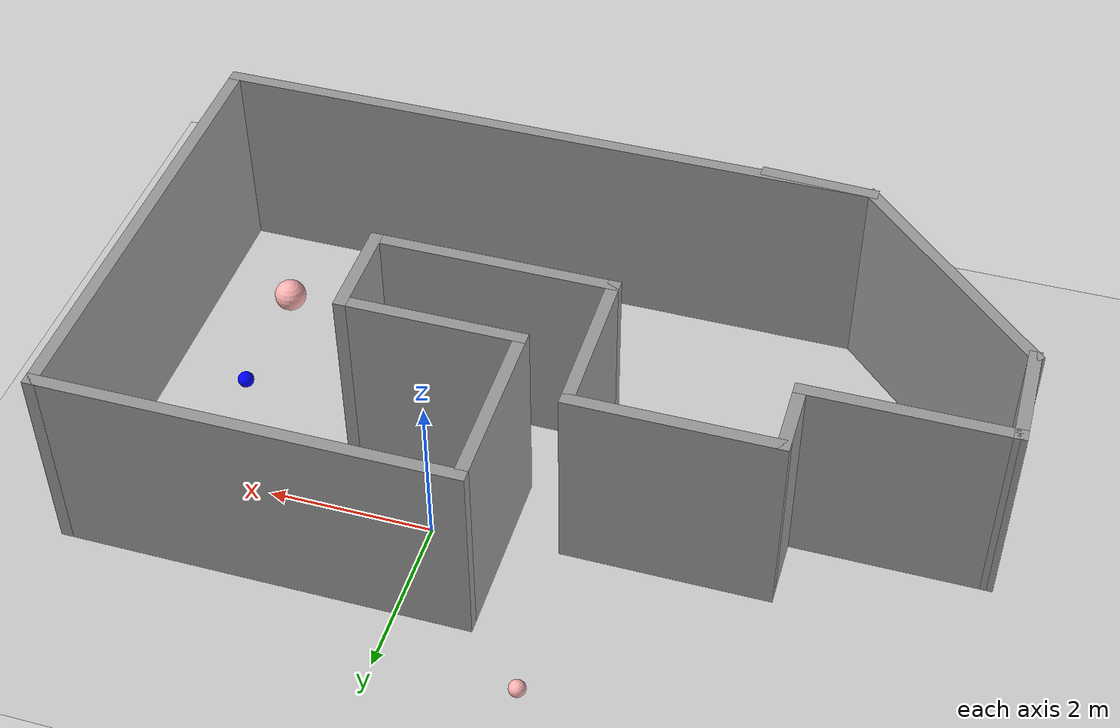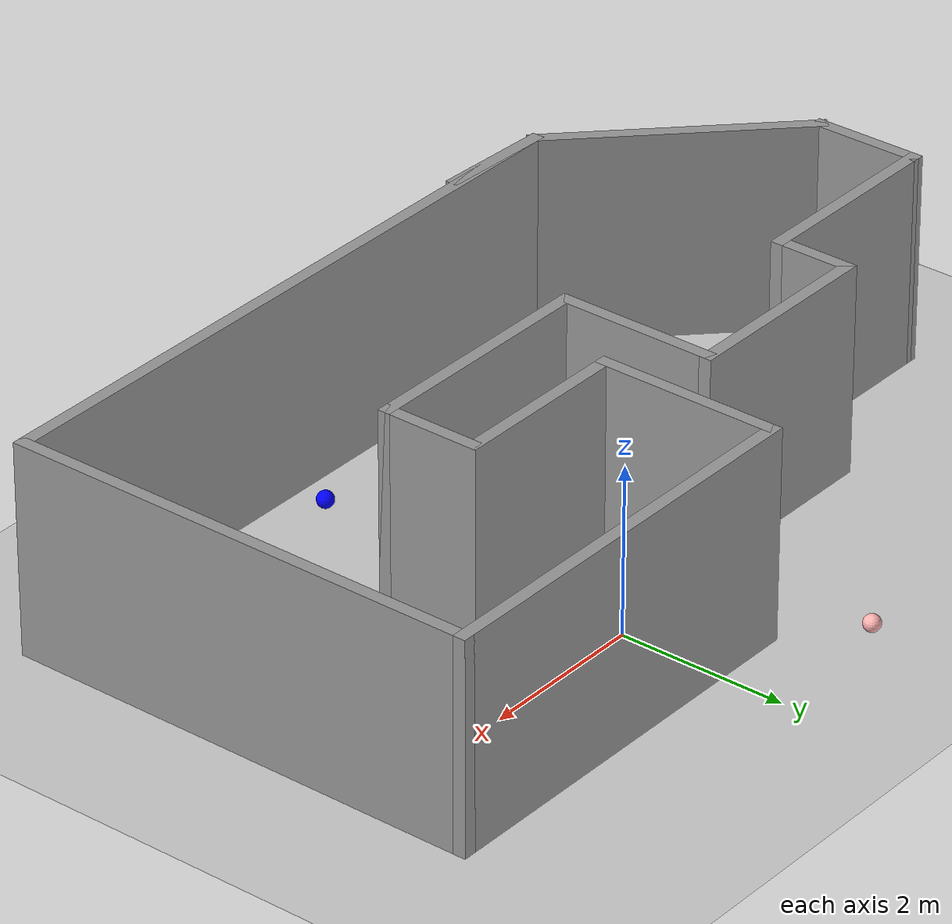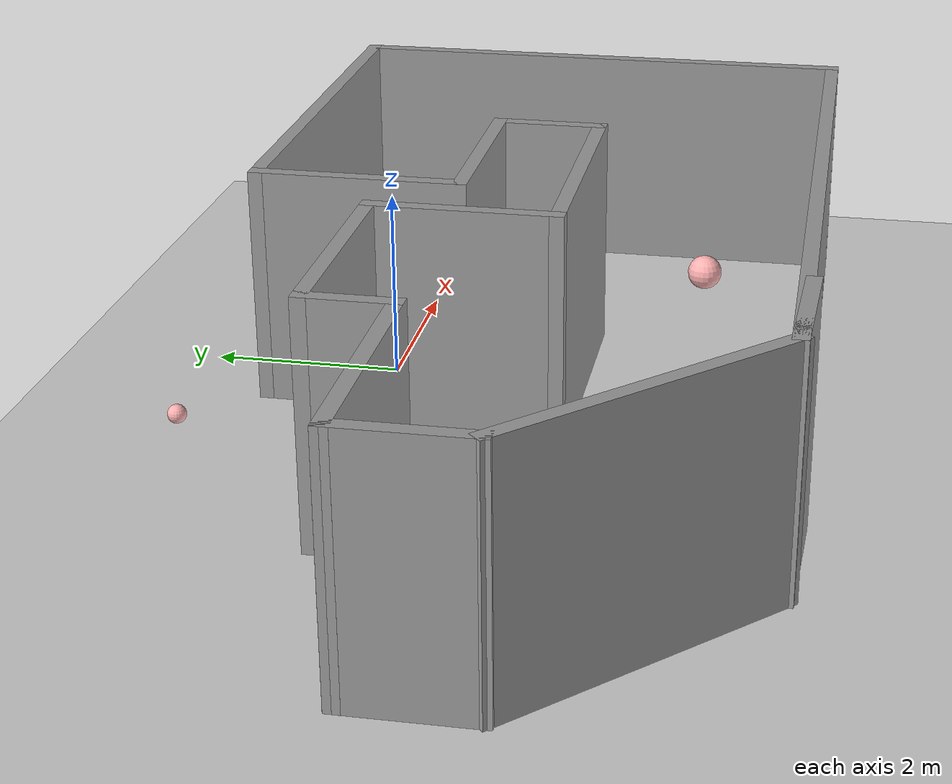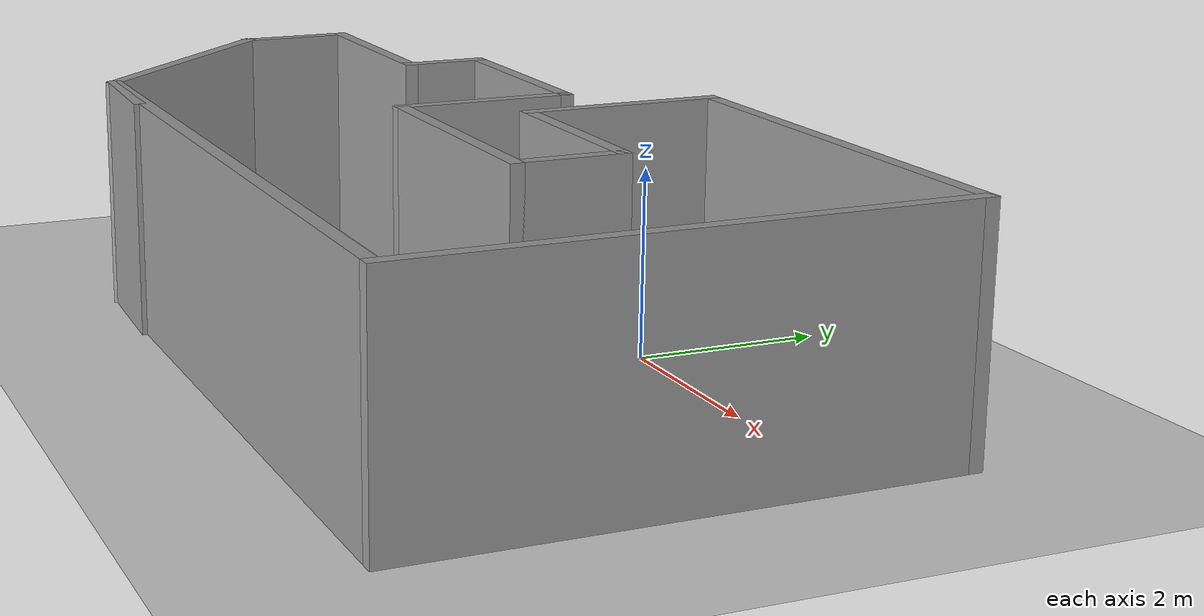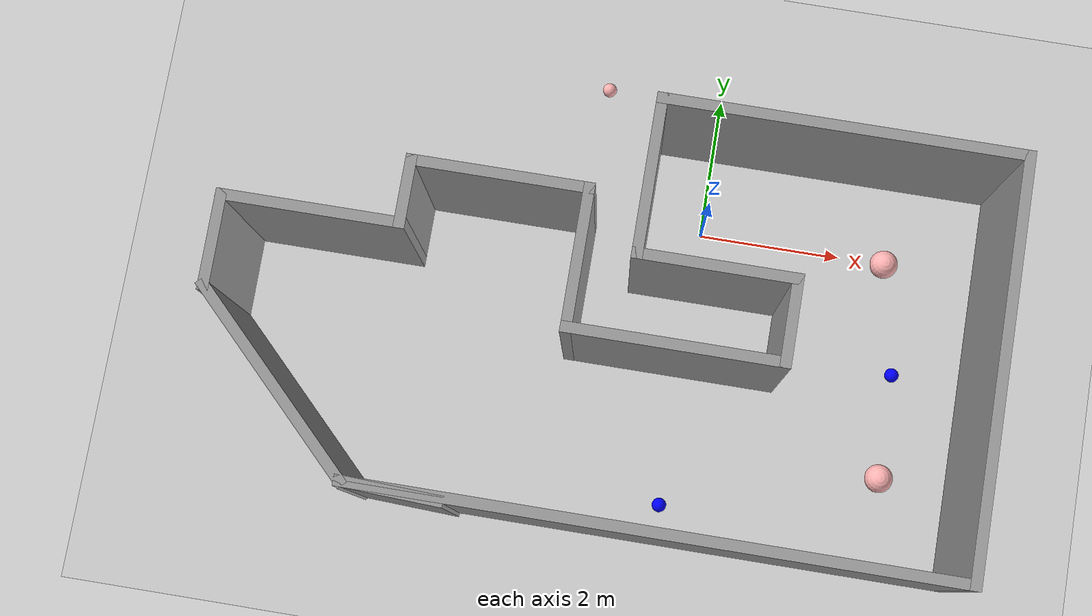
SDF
<sdf version="1.6">
 <world name="default">
  <model name="ground_plane">
   <static>1</static>
   <link name="link">
    <collision name="collision">
     <geometry><plane><normal>0 0 1</normal><size>100 100</size></plane></geometry>
     <surface>
      <contact><collide_bitmask>65535</collide_bitmask></contact>
      <friction><ode><mu>100</mu><mu2>50</mu2></ode></friction>
     </surface>
    </collision>
    <visual name="visual">
     <cast_shadows>0</cast_shadows>
     <geometry><plane><normal>0 0 1</normal><size>100 100</size></plane></geometry>
     <material>
      <script><uri>file://media/materials/scripts/gazebo.material</uri><name>Gazebo/Grey</name></script>
     </material>
    </visual>
   </link>
  </model>
  <model name="closed_building">
   <pose>-1.14525 -1.64005 0 0 -0 0</pose>
   <link name="Wall_0">
    <collision name="Wall_0_Collision">
     <geometry><box><size>3.25 0.15 2.5</size></box></geometry>
     <pose>0 0 1.25 0 -0 0</pose>
    </collision>
    <visual name="Wall_0_Visual">
     <pose>0 0 1.25 0 -0 0</pose>
     <geometry><box><size>3.25 0.15 2.5</size></box></geometry>
     <material>
      <script><uri>file://media/materials/scripts/gazebo.material</uri><name>Gazebo/Grey</name></script>
      <ambient>1 1 1 1</ambient>
     </material>
     <meta><layer>0</layer></meta>
    </visual>
    <pose>-4.03447 -1.67669 0 0 0 -0.785398</pose>
   </link>
   <link name="Wall_10">
    <collision name="Wall_10_Collision">
     <geometry><box><size>2 0.15 2.5</size></box></geometry>
     <pose>0 0 1.25 0 -0 0</pose>
    </collision>
    <visual name="Wall_10_Visual">
     <pose>0 0 1.25 0 -0 0</pose>
     <geometry><box><size>2 0.15 2.5</size></box></geometry>
     <material>
      <script><uri>file://media/materials/scripts/gazebo.material</uri><name>Gazebo/Grey</name></script>
      <ambient>1 1 1 1</ambient>
     </material>
     <meta><layer>0</layer></meta>
    </visual>
    <pose>-0.438452 0.552296 0 0 -0 1.5708</pose>
   </link>
   <link name="Wall_11">
    <collision name="Wall_11_Collision">
     <geometry><box><size>2.5 0.15 2.5</size></box></geometry>
     <pose>0 0 1.25 0 -0 0</pose>
    </collision>
    <visual name="Wall_11_Visual">
     <pose>0 0 1.25 0 -0 0</pose>
     <geometry><box><size>2.5 0.15 2.5</size></box></geometry>
     <material>
      <script><uri>file://media/materials/scripts/gazebo.material</uri><name>Gazebo/Grey</name></script>
      <ambient>1 1 1 1</ambient>
     </material>
     <meta><layer>0</layer></meta>
    </visual>
    <pose>-1.61345 1.4773 0 0 -0 3.14159</pose>
   </link>
   <link name="Wall_12">
    <collision name="Wall_12_Collision">
     <geometry><box><size>1 0.15 2.5</size></box></geometry>
     <pose>0 0 1.25 0 -0 0</pose>
    </collision>
    <visual name="Wall_12_Visual">
     <pose>0 0 1.25 0 -0 0</pose>
     <geometry><box><size>1 0.15 2.5</size></box></geometry>
     <material>
      <script><uri>file://media/materials/scripts/gazebo.material</uri><name>Gazebo/Grey</name></script>
      <ambient>1 1 1 1</ambient>
     </material>
     <meta><layer>0</layer></meta>
    </visual>
    <pose>-2.78845 1.0523 0 0 0 -1.5708</pose>
   </link>
   <link name="Wall_13">
    <collision name="Wall_13_Collision">
     <geometry><box><size>2.5 0.15 2.5</size></box></geometry>
     <pose>0 0 1.25 0 -0 0</pose>
    </collision>
    <visual name="Wall_13_Visual">
     <pose>0 0 1.25 0 -0 0</pose>
     <geometry><box><size>2.5 0.15 2.5</size></box></geometry>
     <material>
      <script><uri>file://media/materials/scripts/gazebo.material</uri><name>Gazebo/Grey</name></script>
      <ambient>1 1 1 1</ambient>
     </material>
     <meta><layer>0</layer></meta>
    </visual>
    <pose>-3.96345 0.627296 0 0 -0 3.14159</pose>
   </link>
   <link name="Wall_14">
    <collision name="Wall_14_Collision">
     <geometry><box><size>1.358 0.15 2.5</size></box></geometry>
     <pose>0 0 1.25 0 -0 0</pose>
    </collision>
    <visual name="Wall_14_Visual">
     <pose>0 0 1.25 0 -0 0</pose>
     <geometry><box><size>1.358 0.15 2.5</size></box></geometry>
     <material>
      <script><uri>file://media/materials/scripts/gazebo.material</uri><name>Gazebo/Grey</name></script>
      <ambient>1 1 1 1</ambient>
     </material>
     <meta><layer>0</layer></meta>
    </visual>
    <pose>-5.13447 0.023312 0 0 0 -1.5642</pose>
   </link>
   <link name="Wall_2">
    <collision name="Wall_2_Collision">
     <geometry><box><size>1.42053 0.15 2.5</size></box></geometry>
     <pose>0 0 1.25 0 -0 0</pose>
    </collision>
    <visual name="Wall_2_Visual">
     <pose>0 0 1.25 0 -0 0</pose>
     <geometry><box><size>1.42053 0.15 2.5</size></box></geometry>
     <material>
      <script><uri>file://media/materials/scripts/gazebo.material</uri><name>Gazebo/Grey</name></script>
      <ambient>1 1 1 1</ambient>
     </material>
     <meta><layer>0</layer></meta>
    </visual>
    <pose>-2.30371 -2.79851 0 0 -0 3.10096</pose>
   </link>
   <link name="Wall_3">
    <collision name="Wall_3_Collision">
     <geometry><box><size>8.25 0.15 2.5</size></box></geometry>
     <pose>0 0 1.25 0 -0 0</pose>
    </collision>
    <visual name="Wall_3_Visual">
     <pose>0 0 1.25 0 -0 0</pose>
     <geometry><box><size>8.25 0.15 2.5</size></box></geometry>
     <material>
      <script><uri>file://media/materials/scripts/gazebo.material</uri><name>Gazebo/Grey</name></script>
      <ambient>1 1 1 1</ambient>
     </material>
     <meta><layer>0</layer></meta>
    </visual>
    <pose>1.11155 -2.7727 0 0 -0 0</pose>
   </link>
   <link name="Wall_4">
    <collision name="Wall_4_Collision">
     <geometry><box><size>5.75 0.15 2.5</size></box></geometry>
     <pose>0 0 1.25 0 -0 0</pose>
    </collision>
    <visual name="Wall_4_Visual">
     <pose>0 0 1.25 0 -0 0</pose>
     <geometry><box><size>5.75 0.15 2.5</size></box></geometry>
     <material>
      <script><uri>file://media/materials/scripts/gazebo.material</uri><name>Gazebo/Grey</name></script>
      <ambient>1 1 1 1</ambient>
     </material>
     <meta><layer>0</layer></meta>
    </visual>
    <pose>5.16155 0.027296 0 0 -0 1.5708</pose>
   </link>
   <link name="Wall_5">
    <collision name="Wall_5_Collision">
     <geometry><box><size>5 0.15 2.5</size></box></geometry>
     <pose>0 0 1.25 0 -0 0</pose>
    </collision>
    <visual name="Wall_5_Visual">
     <pose>0 0 1.25 0 -0 0</pose>
     <geometry><box><size>5 0.15 2.5</size></box></geometry>
     <material>
      <script><uri>file://media/materials/scripts/gazebo.material</uri><name>Gazebo/Grey</name></script>
      <ambient>1 1 1 1</ambient>
     </material>
     <meta><layer>0</layer></meta>
    </visual>
    <pose>2.73655 2.8273 0 0 -0 3.14159</pose>
   </link>
   <link name="Wall_6">
    <collision name="Wall_6_Collision">
     <geometry><box><size>2.25 0.15 2.5</size></box></geometry>
     <pose>0 0 1.25 0 -0 0</pose>
    </collision>
    <visual name="Wall_6_Visual">
     <pose>0 0 1.25 0 -0 0</pose>
     <geometry><box><size>2.25 0.15 2.5</size></box></geometry>
     <material>
      <script><uri>file://media/materials/scripts/gazebo.material</uri><name>Gazebo/Grey</name></script>
      <ambient>1 1 1 1</ambient>
     </material>
     <meta><layer>0</layer></meta>
    </visual>
    <pose>0.311548 1.7773 0 0 0 -1.5708</pose>
   </link>
   <link name="Wall_7">
    <collision name="Wall_7_Collision">
     <geometry><box><size>2.25 0.15 2.5</size></box></geometry>
     <pose>0 0 1.25 0 -0 0</pose>
    </collision>
    <visual name="Wall_7_Visual">
     <pose>0 0 1.25 0 -0 0</pose>
     <geometry><box><size>2.25 0.15 2.5</size></box></geometry>
     <material>
      <script><uri>file://media/materials/scripts/gazebo.material</uri><name>Gazebo/Grey</name></script>
      <ambient>1 1 1 1</ambient>
     </material>
     <meta><layer>0</layer></meta>
    </visual>
    <pose>1.36155 0.727296 0 0 -0 0</pose>
   </link>
   <link name="Wall_8">
    <collision name="Wall_8_Collision">
     <geometry><box><size>1.25 0.15 2.5</size></box></geometry>
     <pose>0 0 1.25 0 -0 0</pose>
    </collision>
    <visual name="Wall_8_Visual">
     <pose>0 0 1.25 0 -0 0</pose>
     <geometry><box><size>1.25 0.15 2.5</size></box></geometry>
     <material>
      <script><uri>file://media/materials/scripts/gazebo.material</uri><name>Gazebo/Grey</name></script>
      <ambient>1 1 1 1</ambient>
     </material>
     <meta><layer>0</layer></meta>
    </visual>
    <pose>2.41155 0.177296 0 0 0 -1.5708</pose>
   </link>
   <link name="Wall_9">
    <collision name="Wall_9_Collision">
     <geometry><box><size>3 0.15 2.5</size></box></geometry>
     <pose>0 0 1.25 0 -0 0</pose>
    </collision>
    <visual name="Wall_9_Visual">
     <pose>0 0 1.25 0 -0 0</pose>
     <geometry><box><size>3 0.15 2.5</size></box></geometry>
     <material>
      <script><uri>file://media/materials/scripts/gazebo.material</uri><name>Gazebo/Grey</name></script>
      <ambient>1 1 1 1</ambient>
     </material>
     <meta><layer>0</layer></meta>
    </visual>
    <pose>0.986548 -0.372704 0 0 -0 3.14159</pose>
   </link>
   <static>1</static>
  </model>
  <model name="small_blue_very_clone">
   <link name="link">
    <inertial>
     <mass>1</mass>
     <inertia><ixx>0.1</ixx><ixy>0</ixy><ixz>0</ixz><iyy>0.1</iyy><iyz>0</iyz><izz>0.1</izz></inertia>
    </inertial>
    <pose>0 0 -0.299151 0 -0 0</pose>
    <visual name="visual">
     <geometry><sphere><radius>0.1</radius></sphere></geometry>
     <material>
      <script><name>Gazebo/Grey</name><uri>file://media/materials/scripts/gazebo.material</uri></script>
      <shader type="vertex"><normal_map>__default__</normal_map></shader>
      <ambient>0 0 1 1</ambient>
      <diffuse>0 0 1 1</diffuse>
      <specular>0 0 1 1</specular>
      <emissive>0 0 1 1</emissive>
     </material>
    </visual>
    <collision name="collision">
     <geometry><sphere><radius>0.1</radius></sphere></geometry>
     <surface>
      <friction>
       <ode><mu>1</mu><mu2>1</mu2><fdir1>0 0 0</fdir1><slip1>0</slip1><slip2>0</slip2></ode>
       <torsional>
        <coefficient>1</coefficient>
        <patch_radius>0</patch_radius>
        <surface_radius>0</surface_radius>
        <use_patch_radius>1</use_patch_radius>
        <ode><slip>0</slip></ode>
       </torsional>
      </friction>
      <bounce><restitution_coefficient>0</restitution_coefficient><threshold>1e+06</threshold></bounce>
      <contact>
       <collide_without_contact>0</collide_without_contact>
       <collide_without_contact_bitmask>1</collide_without_contact_bitmask>
       <collide_bitmask>1</collide_bitmask>
       <ode>
        <soft_cfm>0</soft_cfm>
        <soft_erp>0.2</soft_erp>
        <kp>1e+13</kp>
        <kd>1</kd>
        <max_vel>0.01</max_vel>
        <min_depth>0</min_depth>
       </ode>
       <bullet>
        <split_impulse>1</split_impulse>
        <split_impulse_penetration_threshold>-0.01</split_impulse_penetration_threshold>
        <soft_cfm>0</soft_cfm>
        <soft_erp>0.2</soft_erp>
        <kp>1e+13</kp>
        <kd>1</kd>
       </bullet>
      </contact>
     </surface>
    </collision>
   </link>
   <static>0</static>
   <pose>0.007368 -3.92833 0.399151 0 -0 0</pose>
  </model>
  <model name="red_small_very_0">
   <link name="link">
    <inertial>
     <mass>1</mass>
     <inertia><ixx>0.1</ixx><ixy>0</ixy><ixz>0</ixz><iyy>0.1</iyy><iyz>0</iyz><izz>0.1</izz></inertia>
    </inertial>
    <pose>0 0 -0.299151 0 -0 0</pose>
    <visual name="visual">
     <geometry><sphere><radius>0.1</radius></sphere></geometry>
     <material>
      <script><name>Gazebo/Grey</name><uri>file://media/materials/scripts/gazebo.material</uri></script>
      <shader type="vertex"><normal_map>__default__</normal_map></shader>
      <ambient>1 0.3 0.3 1</ambient>
      <diffuse>1 0.7 0.7 1</diffuse>
      <specular>1 0.01 0.01 1</specular>
      <emissive>1 0 0 1</emissive>
     </material>
    </visual>
    <collision name="collision">
     <geometry><sphere><radius>0.1</radius></sphere></geometry>
     <surface>
      <friction>
       <ode><mu>1</mu><mu2>1</mu2><fdir1>0 0 0</fdir1><slip1>0</slip1><slip2>0</slip2></ode>
       <torsional>
        <coefficient>1</coefficient>
        <patch_radius>0</patch_radius>
        <surface_radius>0</surface_radius>
        <use_patch_radius>1</use_patch_radius>
        <ode><slip>0</slip></ode>
       </torsional>
      </friction>
      <bounce><restitution_coefficient>0</restitution_coefficient><threshold>1e+06</threshold></bounce>
      <contact>
       <collide_without_contact>0</collide_without_contact>
       <collide_without_contact_bitmask>1</collide_without_contact_bitmask>
       <collide_bitmask>1</collide_bitmask>
       <ode>
        <soft_cfm>0</soft_cfm>
        <soft_erp>0.2</soft_erp>
        <kp>1e+13</kp>
        <kd>1</kd>
        <max_vel>0.01</max_vel>
        <min_depth>0</min_depth>
       </ode>
       <bullet>
        <split_impulse>1</split_impulse>
        <split_impulse_penetration_threshold>-0.01</split_impulse_penetration_threshold>
        <soft_cfm>0</soft_cfm>
        <soft_erp>0.2</soft_erp>
        <kp>1e+13</kp>
        <kd>1</kd>
       </bullet>
      </contact>
     </surface>
    </collision>
   </link>
   <static>0</static>
   <pose>-1.64187 1.91636 0.399151 0 -0 0</pose>
  </model>
  <model name="red_small">
   <link name="link">
    <inertial>
     <mass>0.8</mass>
     <inertia><ixx>0.0128</ixx><ixy>0</ixy><ixz>0</ixz><iyy>0.0128</iyy><iyz>0</iyz><izz>0.0128</izz></inertia>
    </inertial>
    <pose>0 0 -0.299151 0 -0 0</pose>
    <visual name="visual">
     <geometry><sphere><radius>0.2</radius></sphere></geometry>
     <material>
      <script><name>Gazebo/Grey</name><uri>file://media/materials/scripts/gazebo.material</uri></script>
      <shader type="vertex"><normal_map>__default__</normal_map></shader>
      <ambient>1 0.3 0.3 1</ambient>
      <diffuse>1 0.7 0.7 1</diffuse>
      <specular>1 0.01 0.01 1</specular>
      <emissive>1 0 0 1</emissive>
     </material>
    </visual>
    <collision name="collision">
     <geometry><sphere><radius>0.2</radius></sphere></geometry>
     <surface>
      <friction>
       <ode><mu>1</mu><mu2>1</mu2><fdir1>0 0 0</fdir1><slip1>0</slip1><slip2>0</slip2></ode>
       <torsional>
        <coefficient>1</coefficient>
        <patch_radius>0</patch_radius>
        <surface_radius>0</surface_radius>
        <use_patch_radius>1</use_patch_radius>
        <ode><slip>0</slip></ode>
       </torsional>
      </friction>
      <bounce><restitution_coefficient>0</restitution_coefficient><threshold>1e+06</threshold></bounce>
      <contact>
       <collide_without_contact>0</collide_without_contact>
       <collide_without_contact_bitmask>1</collide_without_contact_bitmask>
       <collide_bitmask>1</collide_bitmask>
       <ode>
        <soft_cfm>0</soft_cfm>
        <soft_erp>0.2</soft_erp>
        <kp>1e+13</kp>
        <kd>1</kd>
        <max_vel>0.01</max_vel>
        <min_depth>0</min_depth>
       </ode>
       <bullet>
        <split_impulse>1</split_impulse>
        <split_impulse_penetration_threshold>-0.01</split_impulse_penetration_threshold>
        <soft_cfm>0</soft_cfm>
        <soft_erp>0.2</soft_erp>
        <kp>1e+13</kp>
        <kd>1</kd>
       </bullet>
      </contact>
     </surface>
    </collision>
   </link>
   <static>0</static>
   <pose>2.64 -0.034926 0.499151 0 -0 0</pose>
  </model>
  <model name="small_blue_very">
   <link name="link">
    <inertial>
     <mass>0.8</mass>
     <inertia><ixx>0.0032</ixx><ixy>0</ixy><ixz>0</ixz><iyy>0.0032</iyy><iyz>0</iyz><izz>0.0032</izz></inertia>
    </inertial>
    <pose>0 0 -0.299151 0 -0 0</pose>
    <visual name="visual">
     <geometry><sphere><radius>0.1</radius></sphere></geometry>
     <material>
      <script><name>Gazebo/Grey</name><uri>file://media/materials/scripts/gazebo.material</uri></script>
      <shader type="vertex"><normal_map>__default__</normal_map></shader>
      <ambient>0 0 1 1</ambient>
      <diffuse>0 0 1 1</diffuse>
      <specular>0 0 1 1</specular>
      <emissive>0 0 1 1</emissive>
     </material>
    </visual>
    <collision name="collision">
     <geometry><sphere><radius>0.1</radius></sphere></geometry>
     <surface>
      <friction>
       <ode><mu>1</mu><mu2>1</mu2><fdir1>0 0 0</fdir1><slip1>0</slip1><slip2>0</slip2></ode>
       <torsional>
        <coefficient>1</coefficient>
        <patch_radius>0</patch_radius>
        <surface_radius>0</surface_radius>
        <use_patch_radius>1</use_patch_radius>
        <ode><slip>0</slip></ode>
       </torsional>
      </friction>
      <bounce><restitution_coefficient>0</restitution_coefficient><threshold>1e+06</threshold></bounce>
      <contact>
       <collide_without_contact>0</collide_without_contact>
       <collide_without_contact_bitmask>1</collide_without_contact_bitmask>
       <collide_bitmask>1</collide_bitmask>
       <ode>
        <soft_cfm>0</soft_cfm>
        <soft_erp>0.2</soft_erp>
        <kp>1e+13</kp>
        <kd>1</kd>
        <max_vel>0.01</max_vel>
        <min_depth>0</min_depth>
       </ode>
       <bullet>
        <split_impulse>1</split_impulse>
        <split_impulse_penetration_threshold>-0.01</split_impulse_penetration_threshold>
        <soft_cfm>0</soft_cfm>
        <soft_erp>0.2</soft_erp>
        <kp>1e+13</kp>
        <kd>1</kd>
       </bullet>
      </contact>
     </surface>
    </collision>
   </link>
   <static>0</static>
   <pose>2.98086 -1.58506 0.399151 0 -0 0</pose>
  </model>
  <model name="red_small_clone">
   <link name="link">
    <inertial>
     <mass>0.8</mass>
     <inertia><ixx>0.0128</ixx><ixy>0</ixy><ixz>0</ixz><iyy>0.0128</iyy><iyz>0</iyz><izz>0.0128</izz></inertia>
    </inertial>
    <pose>0 0 -0.299151 0 -0 0</pose>
    <visual name="visual">
     <geometry><sphere><radius>0.2</radius></sphere></geometry>
     <material>
      <script><name>Gazebo/Grey</name><uri>file://media/materials/scripts/gazebo.material</uri></script>
      <shader type="vertex"><normal_map>__default__</normal_map></shader>
      <ambient>1 0.3 0.3 1</ambient>
      <diffuse>1 0.7 0.7 1</diffuse>
      <specular>1 0.01 0.01 1</specular>
      <emissive>1 0 0 1</emissive>
     </material>
    </visual>
    <collision name="collision">
     <geometry><sphere><radius>0.2</radius></sphere></geometry>
     <surface>
      <friction>
       <ode><mu>1</mu><mu2>1</mu2><fdir1>0 0 0</fdir1><slip1>0</slip1><slip2>0</slip2></ode>
       <torsional>
        <coefficient>1</coefficient>
        <patch_radius>0</patch_radius>
        <surface_radius>0</surface_radius>
        <use_patch_radius>1</use_patch_radius>
        <ode><slip>0</slip></ode>
       </torsional>
      </friction>
      <bounce><restitution_coefficient>0</restitution_coefficient><threshold>1e+06</threshold></bounce>
      <contact>
       <collide_without_contact>0</collide_without_contact>
       <collide_without_contact_bitmask>1</collide_without_contact_bitmask>
       <collide_bitmask>1</collide_bitmask>
       <ode>
        <soft_cfm>0</soft_cfm>
        <soft_erp>0.2</soft_erp>
        <kp>1e+13</kp>
        <kd>1</kd>
        <max_vel>0.01</max_vel>
        <min_depth>0</min_depth>
       </ode>
       <bullet>
        <split_impulse>1</split_impulse>
        <split_impulse_penetration_threshold>-0.01</split_impulse_penetration_threshold>
        <soft_cfm>0</soft_cfm>
        <soft_erp>0.2</soft_erp>
        <kp>1e+13</kp>
        <kd>1</kd>
       </bullet>
      </contact>
     </surface>
    </collision>
   </link>
   <static>0</static>
   <pose>2.98138 -3.07511 0.499151 0 -0 0</pose>
  </model>
 </world>
</sdf>
